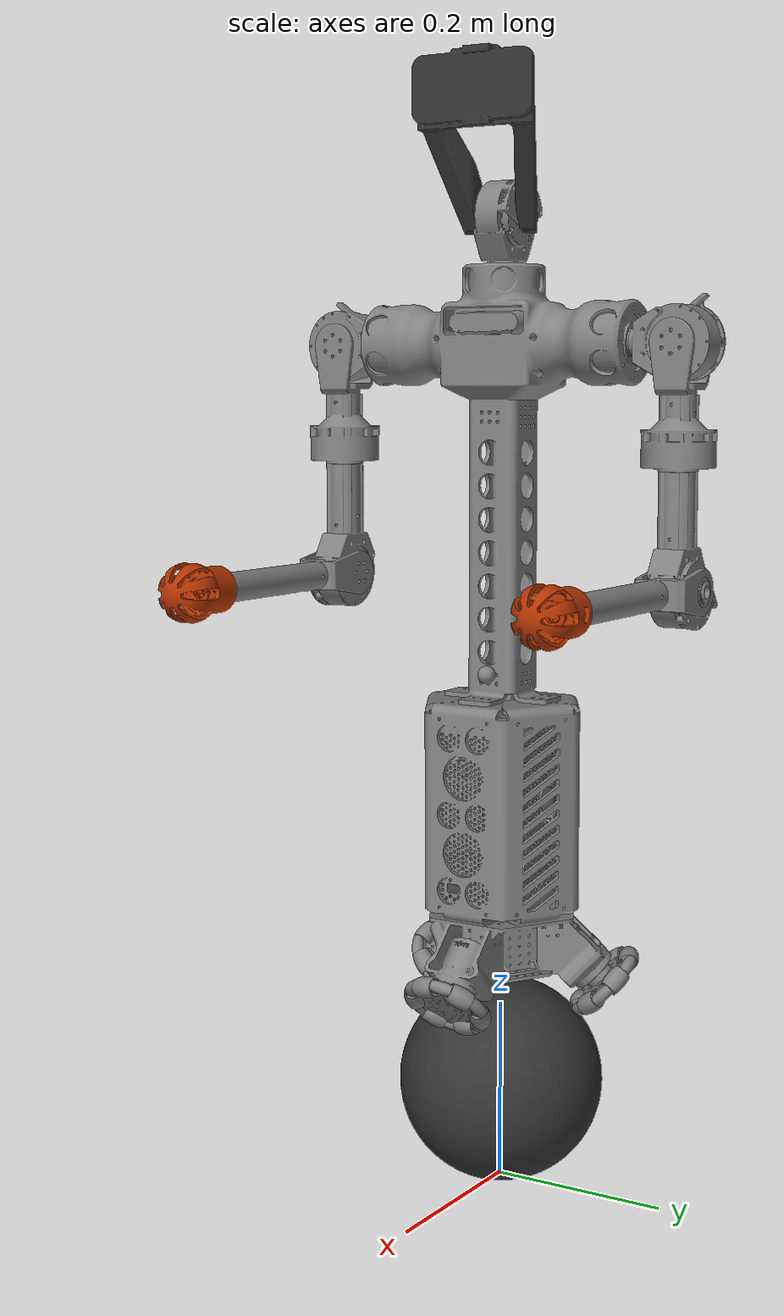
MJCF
<mujoco model="asRoBallet">
  <include file="../common/model.xml" />
  <worldbody>
    <body name="base_link" pos="0.0 0.0 0.1111" quat="1 0 0 0">
      <joint name="floating_base_joint" type="free" limited="false" actuatorfrclimited="false" />
      <include file="../common/base_contents.xml" />
      <body name="ball_link" pos="-0.000184 0.0 0.0027" euler="-8.758115402030124e-47 1.4886381841035652e-16 -2.7200464103316422e-15">
        <joint name="torso_ball_joint" type="ball" pos="0.0 0.0 0" damping="0.01" />
        <include file="../common/ball_contents.xml" />
      </body>
    </body>
  </worldbody>
</mujoco>

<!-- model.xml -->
<mujocoinclude>
  <compiler angle="radian" meshdir="../meshes/" />
  <option timestep="0.002" integrator="implicitfast" impratio="10" cone="elliptic" noslip_iterations="1" />
  <default>
    <default class="torso_joint">
      <joint damping="0.01" frictionloss="0.1" armature="0.0" />
      <position kp="100" dampratio="1" />
    </default>
    <default class="wheel_joint">
      <joint damping="0.007" frictionloss="0.1" armature="0.0" />
    </default>
    <default class="visual">
      <geom group="2" type="mesh" contype="0" conaffinity="0"/>
    </default>
    <default class="collision">
      <geom group="3" type="mesh" rgba=".2 .6 .2 .3" contype="1" conaffinity="9" friction="1 0.005 0.0001"/>
    </default>
    <default class="rubber">
      <geom condim="3" friction="1 0.005 0.0001" priority="1" solimp="0.85 0.99 0.003" />
    </default>
  </default>
  <asset>
    <material name="dark" rgba="0.2 0.2 0.2 1" />
    <material name="white" rgba="0.7 0.7 0.7 1" />
    <material name="orange" rgba="0.7 0.2 0 1" />
    <mesh name="base_link" file="base_link.stl" />
    <mesh name="base_link_collision" file="base_link_collision.stl" />
    <mesh name="torso_link" file="torso_link.stl" />
    <mesh name="neck_link" file="neck_link.stl" />
    <mesh name="head_link" file="head_link.stl" />
    <mesh name="right_shoulder_pitch_link" file="right_shoulder_pitch_link.stl" />
    <mesh name="right_shoulder_roll_link" file="right_shoulder_roll_link.stl" />
    <mesh name="right_shoulder_yaw_link" file="right_shoulder_yaw_link.stl" />
    <mesh name="right_elbow_link" file="right_elbow_link.stl" />
    <mesh name="left_shoulder_pitch_link" file="left_shoulder_pitch_link.stl" />
    <mesh name="left_shoulder_roll_link" file="left_shoulder_roll_link.stl" />
    <mesh name="left_shoulder_yaw_link" file="left_shoulder_yaw_link.stl" />
    <mesh name="left_elbow_link" file="left_elbow_link.stl" />
    <mesh name="hand_link" file="hand_link.stl" />
    <mesh name="axle_link" file="axle_link.stl" />
    <mesh name="wheel_fat_roller_link" file="wheel_fat_roller_link.stl" />
    <mesh name="wheel_thin_roller_link" file="wheel_thin_roller_link.stl" />
    <mesh name="ball_link" file="ball_link.stl" />
  </asset>
  <actuator>
    <motor name="wheel_1_axle_joint" joint="wheel_1_axle_joint" gear="2" forcerange="-2 2" />
    <motor name="wheel_2_axle_joint" joint="wheel_2_axle_joint" gear="2" forcerange="-2 2" />
    <motor name="wheel_3_axle_joint" joint="wheel_3_axle_joint" gear="2" forcerange="-2 2" />
    <position class="torso_joint" name="neck_joint" joint="neck_joint" ctrlrange="-3.14 3.14" forcerange="-17 17" />
    <position class="torso_joint" name="head_joint" joint="head_joint" ctrlrange="-1.5 1.5" forcerange="-17 17" />
    <position class="torso_joint" name="right_shoulder_pitch_joint" joint="right_shoulder_pitch_joint" ctrlrange="-3.0892 2.6704" forcerange="-17 17" />
    <position class="torso_joint" name="right_shoulder_roll_joint" joint="right_shoulder_roll_joint" ctrlrange="-2.2515 1.5882" forcerange="-17 17" />
    <position class="torso_joint" name="right_shoulder_yaw_joint" joint="right_shoulder_yaw_joint" ctrlrange="-2.618 2.618" forcerange="-17 17" />
    <position class="torso_joint" name="right_elbow_joint" joint="right_elbow_joint" ctrlrange="-1.0472 2.0944" forcerange="-17 17" />
    <position class="torso_joint" name="left_shoulder_pitch_joint" joint="left_shoulder_pitch_joint" ctrlrange="-3.0892 2.6704" forcerange="-17 17" />
    <position class="torso_joint" name="left_shoulder_roll_joint" joint="left_shoulder_roll_joint" ctrlrange="-1.5882 2.2515" forcerange="-17 17" />
    <position class="torso_joint" name="left_shoulder_yaw_joint" joint="left_shoulder_yaw_joint" ctrlrange="-2.618 2.618" forcerange="-17 17" />
    <position class="torso_joint" name="left_elbow_joint" joint="left_elbow_joint" ctrlrange="-1.0472 2.0944" forcerange="-17 17" />
  </actuator>
  <sensor>
    <jointpos name="whl_1_pos" joint="wheel_1_axle_joint"/>
    <jointpos name="whl_2_pos" joint="wheel_2_axle_joint"/>
    <jointpos name="whl_3_pos" joint="wheel_3_axle_joint"/>
    <jointvel name="whl_1_vel" joint="wheel_1_axle_joint"/>
    <jointvel name="whl_2_vel" joint="wheel_2_axle_joint"/>
    <jointvel name="whl_3_vel" joint="wheel_3_axle_joint"/>
    <jointactuatorfrc name="whl_1_tor" joint="wheel_1_axle_joint"/>
    <jointactuatorfrc name="whl_2_tor" joint="wheel_2_axle_joint"/>
    <jointactuatorfrc name="whl_3_tor" joint="wheel_3_axle_joint"/>
    <gyro name="imu_gyro" site="imu_site"/>
    <velocimeter name="ball_vel" site="ball_site"/>
    <framequat name="imu_quat" objtype="site" objname="imu_site"/>
    <framepos name="ball_pos" objtype="site" objname="slam_site"/>
    <subtreecom name="base_subtree_com" body="base_link"/>
    <subtreecom name="ball_subtree_com" body="ball_link"/>
  </sensor>
</mujocoinclude>

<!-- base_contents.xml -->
<mujocoinclude>
      <geom class="visual" name="base_link_geom" type="mesh" mesh="base_link" pos="0 0 0" quat="1 0 0 0" />
      <geom class="collision" name="base_link_collision_geom" type="mesh" mesh="base_link_collision" pos="0 0 0" quat="1 0 0 0" contype="1" conaffinity="9" />
      <inertial mass="4.8833491952093615" pos="0.002877142611364894 0.0004304927756562858 0.26369851292018004" fullinertia="0.06026042259145148 0.059947763068358306 0.023961590336546337 -1.4986061024625154e-05 -0.0009871679684399044 -6.292837602434899e-05" />
      <body name="torso_link" pos="-3.583106902738109e-08 -1.526772356719164e-07 0.4400003721030327" quat="1 0 0 0">
        <geom class="visual" name="torso_link_geom" type="mesh" mesh="torso_link" pos="0 0 0" quat="1 0 0 0" />
        <geom class="collision" name="torso_link_collision_core" type="capsule" size="0.065" fromto="0 0 0.08 0 0 0.40" />
        <geom class="collision" name="torso_link_collision_shoulder" type="capsule" size="0.05" fromto="0 -0.11 0.39 0 0.11 0.39" />
        <inertial mass="3.2042605310287064" pos="-1.6013326371601945e-05 -1.0744270105157319e-05 0.34937362535593" fullinertia="0.06334146895523768 0.04663263530859074 0.02111375962377963 -1.1009513608811435e-05 0.00037934627063380277 5.775288224710326e-07" />
        <body name="neck_link" pos="3.5786065771099459e-08 1.5267673482892651e-07 0.47399962789696776" quat="1 0 0 0">
          <joint class="torso_joint" name="neck_joint" type="hinge" axis="0 0 1" pos="0 0 0" limited="true" range="-3.14 3.14" />
          <geom class="visual" name="neck_link_geom" type="mesh" mesh="neck_link" pos="-3.5786067809667331e-08 -1.5267673565049155e-07 3.7210303283058933e-07" quat="1 0 0 0" />
          <inertial mass="0.6024876453871971" pos="-0.00060480919553463285 0.0053730549267241778 0.040723327282059421" fullinertia="0.0005387498816373792 0.0006647047803757507 0.0003746653098801926 -1.2150198739273867e-06 1.964598514418685e-06 -6.496444910251773e-05" />
          <body name="head_link" pos="0 0 0.051999999999980936" quat="1 0 0 0">
            <joint class="torso_joint" name="head_joint" type="hinge" axis="0 1 0" pos="0 0 0" limited="true" range="-1.5 1.5" />
            <geom class="visual" name="head_link_geom" type="mesh" mesh="head_link" material="dark" pos="-3.5786069164782536e-08 -1.5267673767263568e-07 3.7210305106963326e-07" quat="0.70710678118654757 0.70710678118654746 0 0" />
            <geom class="collision" name="head_link_collision_geom" type="sphere" size="0.075" pos="0.048 0 0.096" />
            <inertial mass="0.41566857186457795" pos="0.051514790795471978 -0.0011640226491266836 0.097211574799783734" fullinertia="0.0016807421181515014 0.0011870976231925469 0.00093857075057791808 -9.9204030959273882e-06 -0.00042160476073791619 -1.0995743528604207e-05" />
          </body>
        </body>
        <body name="right_shoulder_pitch_link" pos="3.5794041181005878e-08 -0.1589998473231766 0.38999962789679948" quat="1 0 0 0">
          <joint class="torso_joint" name="right_shoulder_pitch_joint" type="hinge" axis="0 1 0" pos="0 0 0" limited="true" range="-3.0892 2.6704" />
          <geom class="visual" name="right_shoulder_pitch_link_geom" type="mesh" mesh="right_shoulder_pitch_link" pos="-3.5715236021772017e-08 -1.5267682362857707e-07 3.7210246605834405e-07" quat="3.3567501373576225e-11 3.3567540625905464e-11 -0.70710678118654746 0.70710678118654757" />
          <inertial mass="0.4285978598682473" pos="-0.0035057208004766771 -0.049736597388410762 0.00096531846039728947" fullinertia="0.00038191367091916961 0.00027008837993292088 0.00028870719594374465 -7.1528100932659078e-06 2.5690410752563979e-07 -7.0382489936693843e-07" />
          <body name="right_shoulder_roll_link" pos="0 -0.052000000108387907 -4.2800429866929335e-11" quat="1 0 0 0">
            <joint class="torso_joint" name="right_shoulder_roll_joint" type="hinge" axis="1 0 0" pos="0 0 0" limited="true" range="-2.2515 1.5882" />
            <geom class="visual" name="right_shoulder_roll_link_geom" type="mesh" mesh="right_shoulder_roll_link" pos="0.017999964284785789 -1.5256840146832766e-07 3.7214356220361883e-07" quat="-0.50003640746222144 -0.49996358988655937 -0.50003640750970924 -0.49996358983910388" />
            <inertial mass="0.45915238056305535" pos="-0.00093467597444268219 -1.8557792167278597e-06 -0.10266809848019756" fullinertia="0.00059089798158056071 0.00061572256647120206 0.00036958677226403444 -3.6403824235693168e-08 -1.6969692848193159e-06 -1.1767438479895389e-07" />
            <body name="right_shoulder_yaw_link" pos="0 0 -0.13399999985166935" quat="1 0 0 0">
              <joint class="torso_joint" name="right_shoulder_yaw_joint" type="hinge" axis="0 0 1" pos="0 0 0" limited="true" range="-2.618 2.618" />
              <geom class="visual" name="right_shoulder_yaw_link_geom" type="mesh" mesh="right_shoulder_yaw_link" pos="-3.5727932942120739e-08 -1.9667691349028193e-05 3.7341798661816869e-07" quat="-0.7120566338975578 5.185023842369527e-05 -5.1126891302655242e-05 -0.70212202986380734" />
              <geom class="collision" name="right_shoulder_yaw_collision_geom" type="capsule" size="0.046" fromto="0 0 0.125 0 0 -0.125" />
              <inertial mass="0.4627321597115143" pos="-0.00094249854053423711 -0.0032554699830349689 -0.11620297190645895" fullinertia="0.00055499218115315154 0.00064725882362421934 0.00027990205911210064 8.6746861908852219e-07 -2.302023423027624e-06 -1.6614430110767197e-05" />
              <body name="right_elbow_link" pos="0 0 -0.1250022425180706" quat="1 0 0 0">
                <joint class="torso_joint" name="right_elbow_joint" type="hinge" axis="0 1 0" pos="0 0 0" limited="true" range="-1.0472 2.0944" />
                <geom class="visual" name="right_elbow_link_geom" type="mesh" mesh="right_elbow_link" pos="-0.000006476214810251235 -0.026535256362601938 -0.00037234232579722053" quat="-0.49651140070870287 -0.5034634107626345 0.5035367380730256 -0.4964390963656208" />
              <geom class="collision" name="right_elbow_collision_geom" type="capsule" size="0.03" fromto="0.01 -0.002539 0 0.20 -0.002564 0" />
                <inertial mass="0.08452681925222644" pos="0.0817247211274807484 -0.000636168567746512453 6.10782539137696761e-05" fullinertia="3.40896682719497591e-05 0.000414732705070502592 0.000427982108972241424 -1.01546075000519717e-06 -9.90927544715774212e-08 -1.8962270739502292e-07" />
                <body name="right_hand_link" pos="0.23799738020861633 0 0" quat="1 0 0 0">
                  <geom class="visual" name="right_hand_link_geom" type="mesh" mesh="hand_link" material="orange" pos="0 -0.00007253328560589621 -0.00000003575144416384687" quat="0.4964390963536736 0.5035367380612417 0.5034634107744209 -0.4965114007206475" />
                  <geom class="collision" name="right_hand_link_collision_geom" type="sphere" size="0.038" pos="0.045 0 0" />
                  <inertial mass="0.32306793312334026" pos="0.0316743514334948614 -6.94904849407248381e-05 0.000125194224437857562" fullinertia="0.000144476814680651868 0.000356172429346065514 0.00035730742394892562 1.08562371657191581e-08 1.43857784336359002e-06 -1.89394094532963684e-08" />
                </body>
              </body>
            </body>
          </body>
        </body>
        <body name="left_shoulder_pitch_link" pos="3.5794040894925615e-08 0.15900015267682377 0.38999962789713566" quat="1 0 0 0">
          <joint class="torso_joint" name="left_shoulder_pitch_joint" type="hinge" axis="0 1 0" pos="0 0 0" limited="true" range="-3.0892 2.6704" />
          <geom class="visual" name="left_shoulder_pitch_link_geom" type="mesh" mesh="left_shoulder_pitch_link" pos="-3.5715239929756209e-08 -1.526768238783764e-07 3.7210213154814462e-07" quat="3.3567501373576225e-11 3.3567540625905464e-11 -0.70710678118654746 0.70710678118654757" />
          <inertial mass="0.4197959811631081" pos="-0.0035384563343647743 0.049690159959561352 0.00097270250547555615" fullinertia="0.00037901241639056219 0.00026635451545675172 0.00028510209686776389 7.1885928166058237e-06 1.6519497314183736e-07 6.6335484628531857e-07" />
          <body name="left_shoulder_roll_link" pos="0 0.052000000000000469 1.7637211136012354e-12" quat="1 0 0 0">
            <joint class="torso_joint" name="left_shoulder_roll_joint" type="hinge" axis="1 0 0" pos="0 0 0" limited="true" range="-1.5882 2.2515" />
            <geom class="visual" name="left_shoulder_roll_link_geom" type="mesh" mesh="left_shoulder_roll_link" pos="0.017999964284779502 -1.5267679057171533e-07 3.7209864789032561e-07" quat="-0.5000000000237198 -0.49999999997626821 0.49999999997626016 0.50000000002375178" />
            <inertial mass="0.4591563607035851" pos="-0.0009345073695043761 -1.3401234253446193e-05 -0.10266776299162134" fullinertia="0.00059090382108144073 0.00061573004982978081 0.00036958820941117288 3.6157425439448148e-08 -1.6999368537404614e-06 8.1821806279338986e-08" />
            <body name="left_shoulder_yaw_link" pos="1.272583080580425e-11 1.5251688800788088e-13 -0.13400000000171003" quat="1 0 0 0">
              <joint class="torso_joint" name="left_shoulder_yaw_joint" type="hinge" axis="0 0 1" pos="0 0 0" limited="true" range="-2.618 2.618" />
              <geom class="visual" name="left_shoulder_yaw_link_geom" type="mesh" mesh="left_shoulder_yaw_link" pos="-3.5740664565499949e-08 -1.5267693923057833e-07 3.7210206671110484e-07" quat="-3.3552827183314093e-11 -0.70710678118653902 0.7071067811865559 3.3581193381593266e-11" />
              <geom class="collision" name="left_shoulder_yaw_collision_geom" type="capsule" size="0.046" fromto="0 0 -0.125 0 0 0.125" />
              <inertial mass="0.4627321597109813" pos="-0.00089718252300088289 0.0032316495334986164 -0.11620344323692403" fullinertia="0.00055498601229489225 0.00064726982398362006 0.00027989722761020508 4.287608615018633e-07 -2.0690003266194188e-06 1.6591634864177614e-05" />
              <body name="left_elbow_link" pos="0 0 -0.1250000000000209" quat="1 0 0 0">
                <joint class="torso_joint" name="left_elbow_joint" type="hinge" axis="0 1 0" pos="0 0 0" limited="true" range="-1.0472 2.0944" />
                <geom class="visual" name="left_elbow_link_geom" type="mesh" mesh="left_elbow_link" pos="-0.00000037210209103549785 0.026499847323063392 -0.00000003575253178799553" quat="-0.5000000000237195 -0.5000000000237516 0.49999999997626077 -0.4999999999762684" />
                <geom class="collision" name="left_elbow_collision_geom" type="capsule" size="0.03" fromto="0.01 0.0025 0 0.20 0.0025 0" />
                <inertial mass="0.08453041843930957" pos="0.0817265023945020902 0.000584473202392184893 6.9307682960720901e-05" fullinertia="3.40913067465003345e-05 0.000414730294413144887 0.000427986785538598462 1.07125377928372783e-06 -8.40132449772244235e-08 3.42645699451018885e-09" />
                <body name="left_hand_link" pos="0.23799962789790821 0 0" quat="1 0 0 0">
                  <geom class="visual" name="left_hand_link_geom" type="mesh" mesh="hand_link" material="orange" pos="0 -0.00000015267693125736728 -0.00000003577513125945958" quat="-0.5000000000237533 0.5000000000237137 0.49999999997627426 0.4999999999762591" />
                  <geom class="collision" name="left_hand_link_collision_geom" type="sphere" size="0.038" pos="0.045 0 0" />
                  <inertial mass="0.32306793312334026" pos="0.0316743506544253164 -9.56701813734795869e-06 -0.000125145841486184046" fullinertia="0.000144476816007852208 0.000356172125814793348 0.00035730772615298861 -2.38922708301456332e-10 -1.43871917548607312e-06 -2.77817732354379815e-09" />
                </body>
              </body>
            </body>
          </body>
        </body>
      </body>
      <body name="wheel_1_axle_link" pos="0.101823 0 0.13137992257516262" quat="0.92387953251129107 1.2487787871004407e-14 -0.38268343236507929 -5.1257458961548325e-15">
        <joint class="wheel_joint" name="wheel_1_axle_joint" type="hinge" axis="0 0 -1" pos="0 0 0" />
        <geom class="visual" name="wheel_1_axle_link_geom" type="mesh" mesh="axle_link" pos="3.2350494513777583e-07 -1.753955935299742e-15 -0.019700208933546823" quat="1 0 0 0" contype="0" conaffinity="0" />
        <inertial mass="0.10506991791855605" pos="-2.1259988360635557e-05 4.0774081433051891e-06 -0.016610169335051102" fullinertia="3.2105747640241144e-05 3.2105951482527904e-05 5.521081409391253e-05 2.295455390607457e-11 9.296983099549901e-10 -1.7563234047730653e-10" />
        <body name="wheel_1_fat_roller_1_link" pos="0.037168239984151863 -0.00990754657809877 -0.021200208933546898" quat="0.6067369905696729 -1.3378781709523291e-15 -9.2936898893907925e-16 -0.79490265081609623">
          <joint name="wheel_1_fat_roller_1_joint" type="hinge" axis="1 0 0" pos="-0.0038395070036022863 6.684001964667868e-08 -2.6657998715049706e-07" />
          <geom class="visual" name="wheel_1_fat_roller_1_link_geom" type="mesh" mesh="wheel_fat_roller_link" pos="0 0 0" quat="1 0 0 0" />
          <geom class="collision" name="wheel_1_fat_roller_1_link_collision_geom" type="mesh" mesh="wheel_fat_roller_link" pos="0 0 0" quat="1 0 0 0" contype="2" conaffinity="12" />
          <inertial mass="0.01599999681958244" pos="-1.2282144226933752e-10 -3.653309616485502e-13 3.5044306668461707e-13" fullinertia="1.3434103183280375e-06 1.1614274925231364e-06 1.1614274633226901e-06 -6.371912071871828e-15 2.399784629403322e-17 -3.8963515573697816e-20" />
        </body>
        <body name="wheel_1_fat_roller_2_link" pos="0.010004094718738935 -0.037142133165781605 -0.02120020893354679" quat="0.1279983218410076 0 1.7666135611217567e-15 -0.99177438442716692">
          <joint name="wheel_1_fat_roller_2_joint" type="hinge" axis="1 0 0" pos="-0.003839664438273287 -2.866457979861089e-07 -2.665799872692172e-07" />
          <geom class="visual" name="wheel_1_fat_roller_2_link_geom" type="mesh" mesh="wheel_fat_roller_link" pos="0 0 0" quat="1 0 0 0" />
          <geom class="collision" name="wheel_1_fat_roller_2_link_collision_geom" type="mesh" mesh="wheel_fat_roller_link" pos="0 0 0" quat="1 0 0 0" contype="2" conaffinity="12" />
          <inertial mass="0.01599999681958244" pos="-1.228214454851237e-10 -3.653307060101461e-13 3.504383564104366e-13" fullinertia="1.343410318328083e-06 1.161427492523178e-06 1.161427463322756e-06 -6.371904342696185e-15 2.3975373451151378e-17 6.723324018831009e-21" />
        </body>
        <body name="wheel_1_fat_roller_3_link" pos="-0.027163821760467815 -0.027234586587684569 -0.021200208933546773" quat="0.38503739385749386 0 0 0.92290097265710425">
          <joint name="wheel_1_fat_roller_3_joint" type="hinge" axis="1 0 0" pos="-0.0038402601569902496 1.8462020800113707e-07 4.4052679291678616e-07" />
          <geom class="visual" name="wheel_1_fat_roller_3_link_geom" type="mesh" mesh="wheel_fat_roller_link" pos="0 0 0" quat="1 0 0 0" />
          <geom class="collision" name="wheel_1_fat_roller_3_link_collision_geom" type="mesh" mesh="wheel_fat_roller_link" pos="0 0 0" quat="1 0 0 0" contype="2" conaffinity="12" />
          <inertial mass="0.01599999681958244" pos="-1.228214437831105e-10 -3.6533172187898313e-13 3.504383564120005e-13" fullinertia="1.3434103183280475e-06 1.1614274925231585e-06 1.1614274633227028e-06 -6.3719133953608084e-15 2.3985590786077633e-17 -3.456953215981613e-20" />
        </body>
        <body name="wheel_1_fat_roller_4_link" pos="-0.037167592974261594 0.0099075465780952866 -0.021200208933546863" quat="0.79490265081609635 5.9938591053252293e-16 -6.6700376039229501e-16 0.6067369905696729">
          <joint name="wheel_1_fat_roller_4_joint" type="hinge" axis="1 0 0" pos="-0.00383949115361849 8.870937972962987e-09 4.4052679200497213e-07" />
          <geom class="visual" name="wheel_1_fat_roller_4_link_geom" type="mesh" mesh="wheel_fat_roller_link" pos="0 0 0" quat="1 0 0 0" />
          <geom class="collision" name="wheel_1_fat_roller_4_link_collision_geom" type="mesh" mesh="wheel_fat_roller_link" pos="0 0 0" quat="1 0 0 0" contype="2" conaffinity="12" />
          <inertial mass="0.01599999681958244" pos="-1.2282144375434876e-10 -3.653297399580547e-13 3.504446367799806e-13" fullinertia="1.343410318328097e-06 1.161427492523153e-06 1.1614274633227198e-06 -6.371905454426928e-15 2.398617312122887e-17 5.082197683525802e-21" />
        </body>
        <body name="wheel_1_fat_roller_5_link" pos="-0.01000344770884857 0.037142133165778052 -0.021200208933546773" quat="0.99177438442716703 -7.6588234775245571e-16 0 0.12799832184100701">
          <joint name="wheel_1_fat_roller_5_joint" type="hinge" axis="1 0 0" pos="-0.0038402902474978396 -1.2237586334101725e-07 -2.6657998929017004e-07" />
          <geom class="visual" name="wheel_1_fat_roller_5_link_geom" type="mesh" mesh="wheel_fat_roller_link" pos="0 0 0" quat="1 0 0 0" />
            <geom class="collision" name="wheel_1_fat_roller_5_link_collision_geom" type="mesh" mesh="wheel_fat_roller_link" pos="0 0 0" quat="1 0 0 0" contype="2" conaffinity="12" />
          <inertial mass="0.01599999681958244" pos="-1.2282143941054357e-10 -3.6533230053912277e-13 3.504320760364013e-13" fullinertia="1.3434103183280703e-06 1.1614274925232055e-06 1.1614274633227193e-06 -6.371901378080869e-15 2.3992208230978057e-17 -2.2843419796264412e-20" />
        </body>
        <body name="wheel_1_fat_roller_6_link" pos="0.027164468770358153 0.027234586587681013 -0.021200208933546971" quat="0.92290097265710436 -2.3440497598046074e-15 -1.1283168178570005e-15 -0.38503739385749369">
          <joint name="wheel_1_fat_roller_6_joint" type="hinge" axis="1 0 0" pos="-0.003840217879284896 2.2733123745391146e-07 -2.665799881118591e-07" />
          <geom class="visual" name="wheel_1_fat_roller_6_link_geom" type="mesh" mesh="wheel_fat_roller_link" pos="0 0 0" quat="1 0 0 0" />
          <geom class="collision" name="wheel_1_fat_roller_6_link_collision_geom" type="mesh" mesh="wheel_fat_roller_link" pos="0 0 0" quat="1 0 0 0" contype="2" conaffinity="12" />
          <inertial mass="0.01599999681958244" pos="-1.2282143715582172e-10 -3.653250266645067e-13 3.504352162203041e-13" fullinertia="1.3434103183279975e-06 1.1614274925231206e-06 1.1614274633226846e-06 -6.37190397211927e-15 2.3979026280736412e-17 -3.801060350803673e-20" />
        </body>
        <body name="wheel_1_thin_roller_1_link" pos="0.041449600738224311 0.011119964088224053 -0.021200208933546953" quat="0.79335334029123461 0 5.189138022593275e-16 -0.60876142900872132">
          <joint name="wheel_1_thin_roller_1_joint" type="hinge" axis="-1 0 0" pos="-0.012878981367297837 -4.0494389607226983e-07 -2.6657998772154634e-07" />
          <geom class="visual" name="wheel_1_thin_roller_1_link_geom" type="mesh" mesh="wheel_thin_roller_link" pos="0 0 0" quat="1 0 0 0" />
          <geom class="collision" name="wheel_1_thin_roller_1_link_collision_geom" type="mesh" mesh="wheel_thin_roller_link" pos="0 0 0" quat="1 0 0 0" contype="2" conaffinity="12" />
          <inertial mass="0.008641045759381547" pos="2.7973938659258895e-12 -3.516729729968076e-13 4.600198193773652e-13" fullinertia="2.1390493200749915e-07 4.282311567841888e-07 4.282311556105352e-07 1.985615958442511e-17 -4.8889474474819784e-17 1.7155858253247802e-18" />
        </body>
        <body name="wheel_1_thin_roller_2_link" pos="0.030355133511158861 -0.030336145008412602 -0.021200208933546738" quat="0.38268343236509045 0 0 -0.92387953251128652">
          <joint name="wheel_1_thin_roller_2_joint" type="hinge" axis="-1 0 0" pos="-0.012879403243135183 -4.4742260816871965e-08 -2.6657998705281044e-07" />
          <geom class="visual" name="wheel_1_thin_roller_2_link_geom" type="mesh" mesh="wheel_thin_roller_link" pos="0 0 0" quat="1 0 0 0" />
          <geom class="collision" name="wheel_1_thin_roller_2_link_collision_geom" type="mesh" mesh="wheel_thin_roller_link" pos="0 0 0" quat="1 0 0 0" contype="2" conaffinity="12" />
          <inertial mass="0.008641045759381547" pos="2.7973918472757214e-12 -3.5167138512363273e-13 4.600182492848256e-13" fullinertia="2.1390493200747372e-07 4.2823115678418043e-07 4.282311556105235e-07 1.9850825923835367e-17 -4.889225049295551e-17 1.6984334081428807e-18" />
        </body>
        <body name="wheel_1_thin_roller_3_link" pos="-0.011094143722120246 -0.041456109096638327 -0.02120020893354679" quat="0.13052619222005171 0 0 0.99144486137381038">
          <joint name="wheel_1_thin_roller_3_joint" type="hinge" axis="-1 0 0" pos="-0.012879191767201734 -5.06469031110986e-07 -2.665799873936836e-07" />
          <geom class="visual" name="wheel_1_thin_roller_3_link_geom" type="mesh" mesh="wheel_thin_roller_link" pos="0 0 0" quat="1 0 0 0" />
          <geom class="collision" name="wheel_1_thin_roller_3_link_collision_geom" type="mesh" mesh="wheel_thin_roller_link" pos="0 0 0" quat="1 0 0 0" contype="2" conaffinity="12" />
          <inertial mass="0.008641045759381547" pos="2.7973960312408696e-12 -3.5167270815307193e-13 4.600182492847629e-13" fullinertia="2.1390493200749823e-07 4.28231156784171e-07 4.2823115561054497e-07 1.986367700183199e-17 -4.889701505328382e-17 1.6987775152777027e-18" />
        </body>
        <body name="wheel_1_thin_roller_4_link" pos="-0.04144895372833398 -0.011119964088227526 -0.021200208933546915" quat="0.60876142900872088 0 0 0.79335334029123494">
          <joint name="wheel_1_thin_roller_4_joint" type="hinge" axis="-1 0 0" pos="-0.012878813908813598 2.2001966523167715e-07 -2.665799885589841e-07" />
          <geom class="visual" name="wheel_1_thin_roller_4_link_geom" type="mesh" mesh="wheel_thin_roller_link" pos="0 0 0" quat="1 0 0 0" />
          <geom class="collision" name="wheel_1_thin_roller_4_link_collision_geom" type="mesh" mesh="wheel_thin_roller_link" pos="0 0 0" quat="1 0 0 0" contype="2" conaffinity="12" />
          <inertial mass="0.008641045759381547" pos="2.797395085035419e-12 -3.516684232182252e-13 4.600245296546128e-13" fullinertia="2.139049320074888e-07 4.2823115678419467e-07 4.282311556105258e-07 1.986067599056965e-17 -4.8895102611707595e-17 1.6993863202085418e-18" />
        </body>
        <body name="wheel_1_thin_roller_5_link" pos="-0.030354486501268541 0.030336145008409084 -0.02120020893354679" quat="0.92387953251128696 0 0 0.38268343236508934">
          <joint name="wheel_1_thin_roller_5_joint" type="hinge" axis="-1 0 0" pos="-0.012879360748213529 -8.723717866100308e-08 4.4052679160078156e-07" />
          <geom class="visual" name="wheel_1_thin_roller_5_link_geom" type="mesh" mesh="wheel_thin_roller_link" pos="0 0 0" quat="1 0 0 0" />
          <geom class="collision" name="wheel_1_thin_roller_5_link_collision_geom" type="mesh" mesh="wheel_thin_roller_link" pos="0 0 0" quat="1 0 0 0" contype="2" conaffinity="12" />
          <inertial mass="0.008641045759381547" pos="2.79739628816782e-12 -3.5167582601570104e-13 4.600119689150253e-13" fullinertia="2.1390493200748076e-07 4.282311567841777e-07 4.2823115561052856e-07 1.9847953952748583e-17 -4.8890715245738614e-17 1.7038597129612285e-18" />
        </body>
        <body name="wheel_1_thin_roller_6_link" pos="0.011094790732010539 0.04145610909663474 -0.02120020893354704" quat="0.99144486137381049 0 0 -0.13052619222005082">
          <joint name="wheel_1_thin_roller_6_joint" type="hinge" axis="-1 0 0" pos="-0.012879133718062565 -4.909148082277767e-07 4.4052679225824176e-07" />
          <geom class="visual" name="wheel_1_thin_roller_6_link_geom" type="mesh" mesh="wheel_thin_roller_link" pos="0 0 0" quat="1 0 0 0" />
          <geom class="collision" name="wheel_1_thin_roller_6_link_collision_geom" type="mesh" mesh="wheel_thin_roller_link" pos="0 0 0" quat="1 0 0 0" contype="2" conaffinity="12" />
          <inertial mass="0.008641045759381547" pos="2.797389964869435e-12 -3.516743336323934e-13 4.600245296547558e-13" fullinertia="2.1390493200747684e-07 4.2823115678417614e-07 4.282311556105218e-07 1.9859699917446836e-17 -4.8899450273007174e-17 1.7036545721693154e-18" />
        </body>
      </body>
      <body name="wheel_2_axle_link" pos="-0.050911999999999999 0.08818200000000001 0.13137992257546052" quat="0.92174428041329848 0.3436490286209361 0.1683803864308604 0.062776365924221075">
        <joint class="wheel_joint" name="wheel_2_axle_joint" type="hinge" axis="0 0 -1" pos="0 0 0" />
        <geom class="visual" name="wheel_2_axle_link_geom" type="mesh" mesh="axle_link" pos="1.8450144871227578e-07 -2.2609976416121391e-07 -0.019699606366323983" quat="1 0 0 0" contype="0" conaffinity="0" />
        <inertial mass="0.10506991791855605" pos="-2.1398991857047721e-05 3.851308380900054e-06 -0.016609566767828276" fullinertia="3.21057476402407e-05 3.210595148252788e-05 5.5210814093912394e-05 2.2954553904534867e-11 9.296983097322205e-10 -1.7563234043622923e-10" />
        <body name="wheel_2_fat_roller_1_link" pos="-0.010003586712344996 0.037141907066015521 -0.021199606366324092" quat="0.99177438442716703 -1.1925542313376464e-15 0 0.12799832184100657">
          <joint name="wheel_2_fat_roller_1_joint" type="hinge" axis="1 0 0" pos="-0.0038399063775775726 4.545179803418795e-07 1.779494115440334e-08" />
          <geom class="visual" name="wheel_2_fat_roller_1_link_geom" type="mesh" mesh="wheel_fat_roller_link" pos="0 0 0" quat="1 0 0 0" />
          <geom class="collision" name="wheel_2_fat_roller_1_link_collision_geom" type="mesh" mesh="wheel_fat_roller_link" pos="0 0 0" quat="1 0 0 0" contype="2" conaffinity="12" />
          <inertial mass="0.01599999681958244" pos="-1.2282144610195403e-10 -3.653330035704364e-13 3.504435129243399e-13" fullinertia="1.3434103183281072e-06 1.1614274925231777e-06 1.16142746332273e-06 -6.371932625655689e-15 2.4009320943490554e-17 8.787966827763366e-21" />
        </body>
        <body name="wheel_2_fat_roller_2_link" pos="0.027164329766861714 0.027234360487918514 -0.021199606366324234" quat="0.92290097265710436 -2.3747083948202539e-15 -1.1561448400331235e-15 -0.38503739385749364">
          <joint name="wheel_2_fat_roller_2_joint" type="hinge" axis="1 0 0" pos="-0.0038395087849223924 -1.8848005305701753e-07 8.330874225193075e-08" />
          <geom class="visual" name="wheel_2_fat_roller_2_link_geom" type="mesh" mesh="wheel_fat_roller_link" pos="0 0 0" quat="1 0 0 0" />
          <geom class="collision" name="wheel_2_fat_roller_2_link_collision_geom" type="mesh" mesh="wheel_fat_roller_link" pos="0 0 0" quat="1 0 0 0" contype="2" conaffinity="12" />
          <inertial mass="0.01599999681958244" pos="-1.2282144306246528e-10 -3.653322839320632e-13 3.504429002484623e-13" fullinertia="1.3434103183280773e-06 1.1614274925231646e-06 1.1614274633227464e-06 -6.371918980484304e-15 2.3982149714729412e-17 -2.6469779601696886e-22" />
        </body>
        <body name="wheel_2_fat_roller_3_link" pos="0.037168100980655427 -0.0099077726778612762 -0.021199606366324057" quat="0.60673699056967256 -6.6668527176031575e-16 -1.3766446327427735e-15 -0.79490265081609657">
          <joint name="wheel_2_fat_roller_3_joint" type="hinge" axis="1 0 0" pos="-0.0038403309948799556 2.7030504030065884e-07 -1.7276499643219256e-07" />
          <geom class="visual" name="wheel_2_fat_roller_3_link_geom" type="mesh" mesh="wheel_fat_roller_link" pos="0 0 0" quat="1 0 0 0" />
          <geom class="collision" name="wheel_2_fat_roller_3_link_collision_geom" type="mesh" mesh="wheel_fat_roller_link" pos="0 0 0" quat="1 0 0 0" contype="2" conaffinity="12" />
          <inertial mass="0.01599999681958244" pos="-1.2282144223187583e-10 -3.65327120976856e-13 3.504387222530862e-13" fullinertia="1.3434103183280411e-06 1.1614274925232004e-06 1.1614274633227276e-06 -6.371927636102234e-15 2.3987655428886565e-17 -2.0117032497289633e-21" />
        </body>
        <body name="wheel_2_fat_roller_4_link" pos="0.01000395571524249 -0.037142359265544024 -0.021199606366323967" quat="0.1279983218410076 0 1.7413232761996222e-15 -0.99177438442716692">
          <joint name="wheel_2_fat_roller_4_joint" type="hinge" axis="1 0 0" pos="-0.0038399887457600266 2.4904530464281297e-07 2.3285554219684094e-08" />
          <geom class="visual" name="wheel_2_fat_roller_4_link_geom" type="mesh" mesh="wheel_fat_roller_link" pos="0 0 0" quat="1 0 0 0" />
          <geom class="collision" name="wheel_2_fat_roller_4_link_collision_geom" type="mesh" mesh="wheel_fat_roller_link" pos="0 0 0" quat="1 0 0 0" contype="2" conaffinity="12" />
          <inertial mass="0.01599999681958244" pos="-1.2282144752009194e-10 -3.6532963269833146e-13 3.5043986721126594e-13" fullinertia="1.3434103183280265e-06 1.1614274925231394e-06 1.1614274633227342e-06 -6.371917008485724e-15 2.400910918525374e-17 -2.1705219273391446e-20" />
        </body>
        <body name="wheel_2_fat_roller_5_link" pos="-0.027163960763964264 -0.027234812687447048 -0.021199606366324075" quat="0.38503739385749386 0 0 0.92290097265710425">
          <joint name="wheel_2_fat_roller_5_joint" type="hinge" axis="1 0 0" pos="-0.003839746438399527 3.337366745647047e-07 5.701441890995466e-07" />
          <geom class="visual" name="wheel_2_fat_roller_5_link_geom" type="mesh" mesh="wheel_fat_roller_link" pos="0 0 0" quat="1 0 0 0" />
          <geom class="collision" name="wheel_2_fat_roller_5_link_collision_geom" type="mesh" mesh="wheel_fat_roller_link" pos="0 0 0" quat="1 0 0 0" contype="2" conaffinity="12" />
          <inertial mass="0.01599999681958244" pos="-1.2282144814136907e-10 -3.6533122578593136e-13 3.504389097952293e-13" fullinertia="1.3434103183280248e-06 1.1614274925231697e-06 1.1614274633227308e-06 -6.371929594865925e-15 2.4011689988764906e-17 -5.108667463127499e-21" />
        </body>
        <body name="wheel_2_fat_roller_6_link" pos="-0.037167731977757926 0.0099073204783327578 -0.021199606366324113" quat="0.79490265081609623 1.0773554668948451e-15 0 0.6067369905696729">
          <joint name="wheel_2_fat_roller_6_joint" type="hinge" axis="1 0 0" pos="-0.003840111866231747 3.017084397062813e-07 2.1384549193470374e-07" />
          <geom class="visual" name="wheel_2_fat_roller_6_link_geom" type="mesh" mesh="wheel_fat_roller_link" pos="0 0 0" quat="1 0 0 0" />
          <geom class="collision" name="wheel_2_fat_roller_6_link_collision_geom" type="mesh" mesh="wheel_fat_roller_link" pos="0 0 0" quat="1 0 0 0" contype="2" conaffinity="12" />
          <inertial mass="0.01599999681958244" pos="-1.2282144568770917e-10 -3.6533099036334646e-13 3.50443087790754e-13" fullinertia="1.3434103183280803e-06 1.1614274925231767e-06 1.1614274633227215e-06 -6.371937006404213e-15 2.4000255043976973e-17 1.572304908340795e-20" />
        </body>
        <body name="wheel_2_thin_roller_1_link" pos="-0.030354625504765025 0.030335918908646609 -0.021199606366324023" quat="0.92387953251128596 0 0 0.38268343236509184">
          <joint name="wheel_2_thin_roller_1_joint" type="hinge" axis="-1 0 0" pos="-0.01287908325047987 3.7202429747050514e-08 2.3292559242276897e-07" />
          <geom class="visual" name="wheel_2_thin_roller_1_link_geom" type="mesh" mesh="wheel_thin_roller_link" pos="0 0 0" quat="1 0 0 0" />
          <geom class="collision" name="wheel_2_thin_roller_1_link_collision_geom" type="mesh" mesh="wheel_thin_roller_link" pos="0 0 0" quat="1 0 0 0" contype="2" conaffinity="12" />
          <inertial mass="0.008641045759381547" pos="2.7973858014644244e-12 -3.51669410775582e-13 4.600202872285159e-13" fullinertia="2.139049320074649e-07 4.2823115678418737e-07 4.2823115561051623e-07 1.9855259611918652e-17 -4.889113214476734e-17 1.6956540812847025e-18" />
        </body>
        <body name="wheel_2_thin_roller_2_link" pos="0.011094651728514157 0.041455882996872258 -0.02119960636632429" quat="0.99144486137381049 0 0 -0.13052619222005096">
          <joint name="wheel_2_thin_roller_2_joint" type="hinge" axis="-1 0 0" pos="-0.012879338150266104 8.083254353320399e-08 2.410194294062175e-07" />
            <geom class="visual" name="wheel_2_thin_roller_2_link_geom" type="mesh" mesh="wheel_thin_roller_link" pos="0 0 0" quat="1 0 0 0" />
            <geom class="collision" name="wheel_2_thin_roller_2_link_collision_geom" type="mesh" mesh="wheel_thin_roller_link" pos="0 0 0" quat="1 0 0 0" contype="2" conaffinity="12" />
          <inertial mass="0.008641045759381547" pos="2.7973973236997297e-12 -3.516705142124468e-13 4.600168238766288e-13" fullinertia="2.1390493200744441e-07 4.2823115678417127e-07 4.282311556105109e-07 1.985880656238528e-17 -4.890424130311508e-17 1.6878984358614053e-18" />
        </body>
        <body name="wheel_2_thin_roller_3_link" pos="0.041449461734727869 0.011119737988461494 -0.021199606366324234" quat="0.79335334029123505 0 0 -0.60876142900872077">
          <joint name="wheel_2_thin_roller_3_joint" type="hinge" axis="-1 0 0" pos="-0.012879000250591875 -7.566599799003516e-08 -3.249193059658845e-07" />
          <geom class="visual" name="wheel_2_thin_roller_3_link_geom" type="mesh" mesh="wheel_thin_roller_link" pos="0 0 0" quat="1 0 0 0" />
          <geom class="collision" name="wheel_2_thin_roller_3_link_collision_geom" type="mesh" mesh="wheel_thin_roller_link" pos="0 0 0" quat="1 0 0 0" contype="2" conaffinity="12" />
          <inertial mass="0.008641045759381547" pos="2.797393911859973e-12 -3.5167256806906165e-13 4.600208700866683e-13" fullinertia="2.1390493200751345e-07 4.2823115678419266e-07 4.282311556105454e-07 1.9862502405362166e-17 -4.891202341831798e-17 1.7101363594492809e-18" />
        </body>
        <body name="wheel_2_thin_roller_4_link" pos="0.030354994507662436 -0.030336371108175067 -0.021199606366323988" quat="0.38268343236508945 0 0 -0.92387953251128696">
          <joint name="wheel_2_thin_roller_4_joint" type="hinge" axis="-1 0 0" pos="-0.012879258014766332 -9.866876713414408e-08 -1.9184509710131956e-07" />
          <geom class="visual" name="wheel_2_thin_roller_4_link_geom" type="mesh" mesh="wheel_thin_roller_link" pos="0 0 0" quat="1 0 0 0" />
          <geom class="collision" name="wheel_2_thin_roller_4_link_collision_geom" type="mesh" mesh="wheel_thin_roller_link" pos="0 0 0" quat="1 0 0 0" contype="2" conaffinity="12" />
          <inertial mass="0.008641045759381547" pos="2.7973902100519208e-12 -3.516715666774317e-13 4.600159316364936e-13" fullinertia="2.1390493200748454e-07 4.28231156784183e-07 4.282311556105274e-07 1.9864213014868926e-17 -4.889722681152063e-17 1.6992539713105333e-18" />
        </body>
        <body name="wheel_2_thin_roller_5_link" pos="-0.01109428272561672 -0.041456335196400733 -0.021199606366324023" quat="0.13052619222005085 0 0 0.99144486137381049">
          <joint name="wheel_2_thin_roller_5_joint" type="hinge" axis="-1 0 0" pos="-0.012879307864501132 -1.3845336660446225e-07 -1.9993893379940605e-07" />
          <geom class="visual" name="wheel_2_thin_roller_5_link_geom" type="mesh" mesh="wheel_thin_roller_link" pos="0 0 0" quat="1 0 0 0" />
          <geom class="collision" name="wheel_2_thin_roller_5_link_collision_geom" type="mesh" mesh="wheel_thin_roller_link" pos="0 0 0" quat="1 0 0 0" contype="2" conaffinity="12" />
          <inertial mass="0.008641045759381547" pos="2.797393370004168e-12 -3.5166992452164445e-13 4.600225351732983e-13" fullinertia="2.1390493200750135e-07 4.2823115678418345e-07 4.282311556105358e-07 1.9861526332239353e-17 -4.88858051016225e-17 1.7074596029870593e-18" />
        </body>
          <body name="wheel_2_thin_roller_6_link" pos="-0.041449092731830416 -0.011120190187989959 -0.021199606366324113" quat="0.60876142900872066 0 0 0.79335334029123517">
          <joint name="wheel_2_thin_roller_6_joint" type="hinge" axis="-1 0 0" pos="-0.012878795200540551 -1.5908071113873712e-07 3.6599980162560497e-07" />
          <geom class="visual" name="wheel_2_thin_roller_6_link_geom" type="mesh" mesh="wheel_thin_roller_link" pos="0 0 0" quat="1 0 0 0" />
          <geom class="collision" name="wheel_2_thin_roller_6_link_collision_geom" type="mesh" mesh="wheel_thin_roller_link" pos="0 0 0" quat="1 0 0 0" contype="2" conaffinity="12" />
          <inertial mass="0.008641045759381547" pos="2.797392926965726e-12 -3.5168132203004217e-13 4.600239842868651e-13" fullinertia="2.139049320074826e-07 4.2823115678418625e-07 4.2823115561052655e-07 1.985919202855073e-17 -4.892065256646813e-17 1.7043295515491586e-18" />
        </body>
      </body>
      <body name="wheel_3_axle_link" pos="-0.050911999999999992 -0.088181999999999996 0.13122992257828825" quat="0.9217442804132997 -0.34364902862093921 0.16838038643084952 -0.062776365924217536">
        <joint class="wheel_joint" name="wheel_3_axle_joint" type="hinge" axis="0 0 -1" pos="0 0 0" />
        <geom class="visual" name="wheel_3_axle_link_geom" type="mesh" mesh="axle_link" pos="1.8450174799587715e-07 2.2609999724559904e-07 -0.019699606369993957" quat="1 0 0 0" contype="0" conaffinity="0" />
        <inertial mass="0.10506991791855605" pos="-2.1398991557775178e-05 4.3035081423049154e-06 -0.016609566771498253" fullinertia="3.21057476402409e-05 3.210595148252759e-05 5.521081409391253e-05 2.2954553946886514e-11 9.296983099888714e-10 -1.7563234050060373e-10" />
        <body name="wheel_3_fat_roller_1_link" pos="0.010003955715541744 -0.037141907065782603 -0.021199606369993889" quat="0.12799832184100782 0 1.8967229563053424e-15 -0.99177438442716692">
          <joint name="wheel_3_fat_roller_1_joint" type="hinge" axis="1 0 0" pos="-0.003840110835318598 6.71760025510457e-08 -1.6697831295669867e-07" />
          <geom class="visual" name="wheel_3_fat_roller_1_link_geom" type="mesh" mesh="wheel_fat_roller_link" pos="0 0 0" quat="1 0 0 0" />
          <geom class="collision" name="wheel_3_fat_roller_1_link_collision_geom" type="mesh" mesh="wheel_fat_roller_link" pos="0 0 0" quat="1 0 0 0" contype="2" conaffinity="12" />
          <inertial mass="0.01599999681958244" pos="-1.2282144735328412e-10 -3.6533269664462743e-13 3.5044235223077284e-13" fullinertia="1.3434103183279765e-06 1.1614274925231557e-06 1.1614274633226914e-06 -6.3719113307179995e-15 2.4021324988539924e-17 -3.1234339930002325e-20" />
        </body>
        <body name="wheel_3_fat_roller_2_link" pos="-0.027163960763665 -0.027234360487685589 -0.021199606369993979" quat="0.38503739385749386 0 0 0.92290097265710425">
          <joint name="wheel_3_fat_roller_2_joint" type="hinge" axis="1 0 0" pos="-0.0038395984882897533 -1.1987765659315659e-07 -7.428864947354487e-09" />
          <geom class="visual" name="wheel_3_fat_roller_2_link_geom" type="mesh" mesh="wheel_fat_roller_link" pos="0 0 0" quat="1 0 0 0" />
          <geom class="collision" name="wheel_3_fat_roller_2_link_collision_geom" type="mesh" mesh="wheel_fat_roller_link" pos="0 0 0" quat="1 0 0 0" contype="2" conaffinity="12" />
          <inertial mass="0.01599999681958244" pos="-1.2282144848323775e-10 -3.653306971328147e-13 3.5043926753389026e-13" fullinertia="1.3434103183280578e-06 1.1614274925231583e-06 1.1614274633226958e-06 -6.371903230965441e-15 2.3997978642931227e-17 -4.5104504441291493e-20" />
        </body>
        <body name="wheel_3_fat_roller_3_link" pos="-0.037167731977458734 0.0099077726780942756 -0.021199606369993997" quat="0.79490265081609635 8.1952780437527524e-16 -5.7315756819231988e-16 0.60673699056967278">
          <joint name="wheel_3_fat_roller_3_joint" type="hinge" axis="1 0 0" pos="-0.003839443998737627 3.32555478827428e-07 -1.7346002499293856e-07" />
          <geom class="visual" name="wheel_3_fat_roller_3_link_geom" type="mesh" mesh="wheel_fat_roller_link" pos="0 0 0" quat="1 0 0 0" />
          <geom class="collision" name="wheel_3_fat_roller_3_link_collision_geom" type="mesh" mesh="wheel_fat_roller_link" pos="0 0 0" quat="1 0 0 0" contype="2" conaffinity="12" />
          <inertial mass="0.01599999681958244" pos="-1.2282144561930586e-10 -3.6533365087603486e-13 3.5043625023248513e-13" fullinertia="1.3434103183280612e-06 1.1614274925231597e-06 1.161427463322704e-06 -6.371901933946241e-15 2.4006184274607753e-17 1.0574676950877906e-20" />
        </body>
        <body name="wheel_3_fat_roller_4_link" pos="-0.010003586712045733 0.037142359265777074 -0.021199606369993889" quat="0.99177438442716703 -9.1195254148072988e-16 0 0.1279983218410071">
          <joint name="wheel_3_fat_roller_4_joint" type="hinge" axis="1 0 0" pos="-0.003840140003360127 -1.5226176755046058e-07 2.0806614806924938e-07" />
          <geom class="visual" name="wheel_3_fat_roller_4_link_geom" type="mesh" mesh="wheel_fat_roller_link" pos="0 0 0" quat="1 0 0 0" />
          <geom class="collision" name="wheel_3_fat_roller_4_link_collision_geom" type="mesh" mesh="wheel_fat_roller_link" pos="0 0 0" quat="1 0 0 0" contype="2" conaffinity="12" />
          <inertial mass="0.01599999681958244" pos="-1.228214435193374e-10 -3.6532920153547296e-13 3.5043945781240176e-13" fullinertia="1.343410318328027e-06 1.1614274925231426e-06 1.1614274633226749e-06 -6.3719167834925974e-15 2.3992472928774074e-17 -8.629148150153185e-21" />
        </body>
        <body name="wheel_3_fat_roller_5_link" pos="0.027164329767160982 0.027234812687680018 -0.021199606369994087" quat="0.92290097265710447 -2.4174561328204826e-15 -1.053682249103837e-15 -0.38503739385749353">
          <joint name="wheel_3_fat_roller_5_joint" type="hinge" axis="1 0 0" pos="-0.003839423033627052 -2.5485680654421285e-07 4.851670036250602e-08" />
          <geom class="visual" name="wheel_3_fat_roller_5_link_geom" type="mesh" mesh="wheel_fat_roller_link" pos="0 0 0" quat="1 0 0 0" />
          <geom class="collision" name="wheel_3_fat_roller_5_link_collision_geom" type="mesh" mesh="wheel_fat_roller_link" pos="0 0 0" quat="1 0 0 0" contype="2" conaffinity="12" />
          <inertial mass="0.01599999681958244" pos="-1.2282145020873183e-10 -3.653241849110429e-13 3.5044097241739433e-13" fullinertia="1.3434103183280566e-06 1.1614274925231536e-06 1.1614274633226999e-06 -6.371902278053376e-15 2.3995014027615837e-17 -6.1409888675936775e-21" />
        </body>
        <body name="wheel_3_fat_roller_6_link" pos="0.037168100980954757 -0.0099073204780997636 -0.021199606369994031" quat="0.60673699056967278 -1.0760228092352851e-15 -1.2038713717513222e-15 -0.79490265081609646">
          <joint name="wheel_3_fat_roller_6_joint" type="hinge" axis="1 0 0" pos="-0.003840609458664355 7.952485764573186e-08 1.1981351487897265e-07" />
          <geom class="visual" name="wheel_3_fat_roller_6_link_geom" type="mesh" mesh="wheel_fat_roller_link" pos="0 0 0" quat="1 0 0 0" />
          <geom class="collision" name="wheel_3_fat_roller_6_link_collision_geom" type="mesh" mesh="wheel_fat_roller_link" pos="0 0 0" quat="1 0 0 0" contype="2" conaffinity="12" />
          <inertial mass="0.01599999681958244" pos="-1.228214386949332e-10 -3.6532457073457786e-13 3.504346818918011e-13" fullinertia="1.343410318328091e-06 1.1614274925232012e-06 1.1614274633227346e-06 -6.3719283375513936e-15 2.401550163702755e-17 -3.494010907423989e-21" />
        </body>
        <body name="wheel_3_thin_roller_1_link" pos="-0.011094282725317364 -0.04145588299663925 -0.021199606369994014" quat="0.13052619222005107 0 0 0.99144486137381049">
          <joint name="wheel_3_thin_roller_1_joint" type="hinge" axis="-1 0 0" pos="-0.012879236220750847 -3.13119038606929e-07 -1.3644928001843495e-07" />
          <geom class="visual" name="wheel_3_thin_roller_1_link_geom" type="mesh" mesh="wheel_thin_roller_link" pos="0 0 0" quat="1 0 0 0" />
          <geom class="collision" name="wheel_3_thin_roller_1_link_collision_geom" type="mesh" mesh="wheel_thin_roller_link" pos="0 0 0" quat="1 0 0 0" contype="2" conaffinity="12" />
          <inertial mass="0.008641045759381547" pos="2.7973928067822175e-12 -3.516721908309314e-13 4.600195439011525e-13" fullinertia="2.139049320074999e-07 4.282311567841598e-07 4.282311556105002e-07 1.9845613031615058e-17 -4.888867045526438e-17 1.697533435636423e-18" />
        </body>
        <body name="wheel_3_thin_roller_2_link" pos="-0.041449092731531079 -0.011119737988228526 -0.021199606369994087" quat="0.60876142900872099 0 0 0.79335334029123494">
          <joint name="wheel_3_thin_roller_2_joint" type="hinge" axis="-1 0 0" pos="-0.012879357647488912 -2.3660935539364727e-07 -2.1727674929042373e-07" />
          <geom class="visual" name="wheel_3_thin_roller_2_link_geom" type="mesh" mesh="wheel_thin_roller_link" pos="0 0 0" quat="1 0 0 0" />
          <geom class="collision" name="wheel_3_thin_roller_2_link_collision_geom" type="mesh" mesh="wheel_thin_roller_link" pos="0 0 0" quat="1 0 0 0" contype="2" conaffinity="12" />
          <inertial mass="0.008641045759381547" pos="2.797386351606566e-12 -3.516817277381605e-13 4.600184448452734e-13" fullinertia="2.1390493200750754e-07 4.282311567841863e-07 4.282311556105541e-07 1.9844062895147134e-17 -4.8904281007784484e-17 1.7193710038078229e-18" />
        </body>
        <body name="wheel_3_thin_roller_3_link" pos="-0.030354625504465653 0.03033637110840812 -0.021199606369993906" quat="0.92387953251128696 0 0 0.38268343236508917">
          <joint name="wheel_3_thin_roller_3_joint" type="hinge" axis="-1 0 0" pos="-0.012878734324215126 3.677448753109866e-07 1.9853549332402715e-07" />
          <geom class="visual" name="wheel_3_thin_roller_3_link_geom" type="mesh" mesh="wheel_thin_roller_link" pos="0 0 0" quat="1 0 0 0" />
          <geom class="collision" name="wheel_3_thin_roller_3_link_collision_geom" type="mesh" mesh="wheel_thin_roller_link" pos="0 0 0" quat="1 0 0 0" contype="2" conaffinity="12" />
          <inertial mass="0.008641045759381547" pos="2.7973883472322318e-12 -3.5166654856219377e-13 4.600208792439889e-13" fullinertia="2.1390493200749198e-07 4.2823115678418583e-07 4.282311556105433e-07 1.987051943985903e-17 -4.890466481958871e-17 1.7126212100093902e-18" />
        </body>
        <body name="wheel_3_thin_roller_4_link" pos="0.011094651728813396 0.041456335196633755 -0.021199606369994121" quat="0.9914448613738106 0 0 -0.13052619222005069">
          <joint name="wheel_3_thin_roller_4_joint" type="hinge" axis="-1 0 0" pos="-0.012879064088798192 1.833494921293097e-07 -5.295696656911191e-07" />
          <geom class="visual" name="wheel_3_thin_roller_4_link_geom" type="mesh" mesh="wheel_thin_roller_link" pos="0 0 0" quat="1 0 0 0" />
          <geom class="collision" name="wheel_3_thin_roller_4_link_collision_geom" type="mesh" mesh="wheel_thin_roller_link" pos="0 0 0" quat="1 0 0 0" contype="2" conaffinity="12" />
          <inertial mass="0.008641045759381547" pos="2.7973947539804597e-12 -3.516790494089829e-13 4.600292357035275e-13" fullinertia="2.1390493200749783e-07 4.282311567841932e-07 4.282311556105025e-07 1.985673364777022e-17 -4.8888531488921474e-17 1.7118271166213393e-18" />
        </body>
        <body name="wheel_3_thin_roller_5_link" pos="0.041449461735027102 0.011120190188222964 -0.021199606369994087" quat="0.79335334029123505 0 0 -0.60876142900872077">
          <joint name="wheel_3_thin_roller_5_joint" type="hinge" axis="-1 0 0" pos="-0.01287913836128406 -2.668958200865816e-07 2.5836458480369556e-07" />
          <geom class="visual" name="wheel_3_thin_roller_5_link_geom" type="mesh" mesh="wheel_thin_roller_link" pos="0 0 0" quat="1 0 0 0" />
          <geom class="collision" name="wheel_3_thin_roller_5_link_collision_geom" type="mesh" mesh="wheel_thin_roller_link" pos="0 0 0" quat="1 0 0 0" contype="2" conaffinity="12" />
          <inertial mass="0.008641045759381547" pos="2.797389875643623e-12 -3.5167365413842857e-13 4.600264095282617e-13" fullinertia="2.139049320074855e-07 4.282311567841954e-07 4.282311556105261e-07 1.9860593272508394e-17 -4.888882265649709e-17 1.707750770562678e-18" />
        </body>
        <body name="wheel_3_thin_roller_6_link" pos="0.030354994507961836 -0.03033591890841357 -0.021199606369993906" quat="0.38268343236508978 0 0 -0.92387953251128674">
          <joint name="wheel_3_thin_roller_6_joint" type="hinge" axis="-1 0 0" pos="-0.012878969311330826 -1.556768344226564e-07 4.5492477751193916e-07" />
          <geom class="visual" name="wheel_3_thin_roller_6_link_geom" type="mesh" mesh="wheel_thin_roller_link" pos="0 0 0" quat="1 0 0 0" />
          <geom class="collision" name="wheel_3_thin_roller_6_link_collision_geom" type="mesh" mesh="wheel_thin_roller_link" pos="0 0 0" quat="1 0 0 0" contype="2" conaffinity="12" />
          <inertial mass="0.008641045759381547" pos="2.797393398117369e-12 -3.5166974066579903e-13 4.600184798059384e-13" fullinertia="2.1390493200750823e-07 4.2823115678419875e-07 4.282311556105258e-07 1.9865873993538932e-17 -4.887943911962829e-17 1.7138388198710683e-18" />
        </body>
      </body>
      <site name="imu_site" pos="0.005 -0.017 0.272" size="0.01"/>
      <site name="slam_site" pos="0.035 0 0.47" size="0.01"/>
      <site name="ball_site" pos="0 0 0" size="0.01"/>
</mujocoinclude>

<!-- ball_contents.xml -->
<mujocoinclude>
        <geom class="rubber" name="ball_link_geom" type="mesh" mesh="ball_link" material="dark" pos="0 0 0" euler="0 0 0" contype="4" conaffinity="10"/>
        <inertial mass="3.021143163744471" pos="2.885352467797298e-17 2.885352467797308e-17 2.886579864025402e-17" fullinertia="0.024537068316026582 0.024537068316026783 0.024537068316026575 1.2502313135099962e-16 2.33620219102254e-17 -1.3441326783345871e-17"/>
</mujocoinclude>
